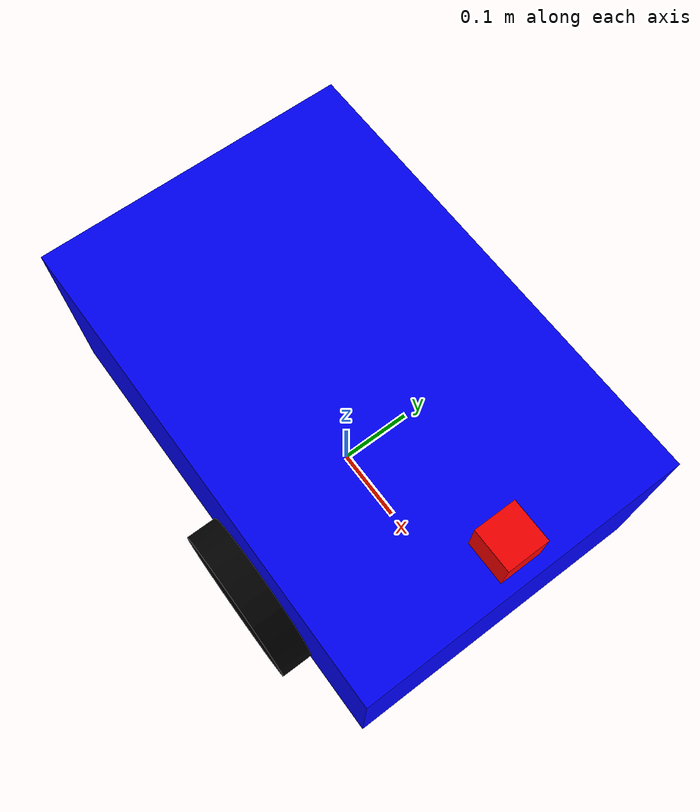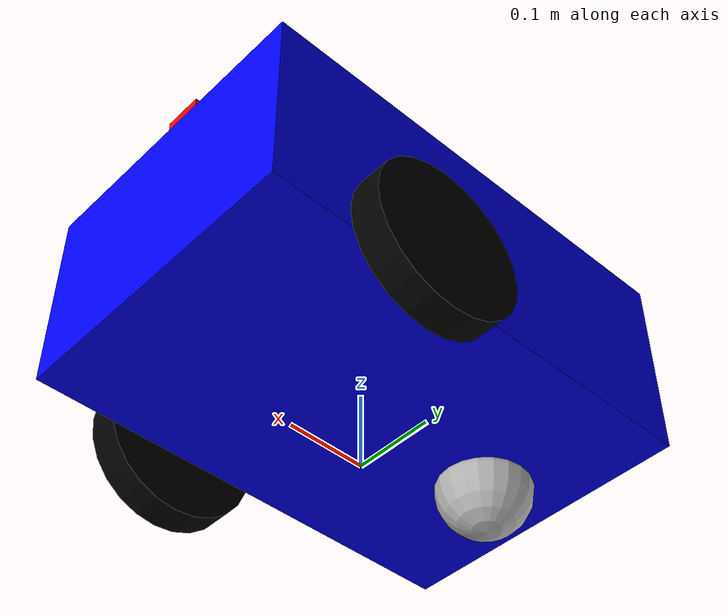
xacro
<?xml version="1.0"?>
<robot name="my_robot" xmlns:xacro="http://www.ros.org/wiki/xacro">

  <xacro:arg name="controller_config_file" default=""/>
  <xacro:property name="controller_config_file" value="$(arg controller_config_file)"/>

  <link name="base_footprint"/>

  <joint name="base_joint" type="fixed">
    <parent link="base_footprint"/>
    <child link="base_link"/>
    <origin xyz="0.0 0.0 0.2" rpy="0.0 0.0 0.0"/>
  </joint>

  <!-- Base Link -->
  <link name="base_link">
    <visual>
      <geometry>
        <box size="0.6 0.4 0.25"/>
      </geometry>
      <material name="blue">
        <color rgba="0 0 1 1"/>
      </material>
    </visual>
    <collision>
      <geometry>
        <box size="0.6 0.4 0.25"/>

      </geometry>
    </collision>
    <inertial>
      <mass value="5.0"/>
      <inertia ixx="0.04" ixy="0.0" ixz="0.0" iyy="0.08" iyz="0.0" izz="0.1"/>
    </inertial>
  </link>

  <!-- Left Wheel -->
  <link name="left_wheel_link">
    <visual>
      <geometry>
        <cylinder radius="0.1" length="0.04"/>
      </geometry>
      <material name="black">
        <color rgba="0 0 0 1"/>
      </material>
    </visual>
    <collision>
      <geometry>
        <cylinder radius="0.1" length="0.04"/>
      </geometry>
    </collision>
    <inertial>
      <mass value="0.5"/>
      <inertia ixx="0.001" ixy="0.0" ixz="0.0" iyy="0.001" iyz="0.0" izz="0.001"/>
    </inertial>
  </link>

  <joint name="left_wheel_joint" type="continuous">
    <parent link="base_link"/>
    <child link="left_wheel_link"/>
    <origin xyz="0.10 0.22 -0.1" rpy="1.5707 0 0"/>
    <axis xyz="0 0 1"/>
  </joint>

  <!-- Right Wheel -->
  <link name="right_wheel_link">
    <visual>
      <geometry>
        <cylinder radius="0.1" length="0.04"/>
      </geometry>
      <material name="black"/>
    </visual>
    <collision>
      <geometry>
        <cylinder radius="0.1" length="0.04"/>
      </geometry>
    </collision>
    <inertial>
      <mass value="0.5"/>
      <inertia ixx="0.001" ixy="0.0" ixz="0.0" iyy="0.001" iyz="0.0" izz="0.001"/>
    </inertial>
  </link>

  <joint name="right_wheel_joint" type="continuous">
    <parent link="base_link"/>
    <child link="right_wheel_link"/>
    <origin xyz="0.1 -0.22 -0.1" rpy="1.5707 0 0"/>
    <axis xyz="0 0 1"/>
  </joint>

  <!-- Caster Wheel (Sphere Support) -->
  <link name="caster_wheel_link">
    <visual>
      <geometry>
        <sphere radius="0.06"/>
      </geometry>
      <material name="grey">
        <color rgba="0.7 0.7 0.7 1"/>
      </material>
    </visual>
    <collision>
      <geometry>
        <sphere radius="0.06"/>
      </geometry>
    </collision>
    <inertial>
      <mass value="0.1"/>
      <inertia ixx="0.0001" ixy="0.0" ixz="0.0" iyy="0.0001" iyz="0.0" izz="0.0001"/>
    </inertial>
  </link>

  <joint name="caster_wheel_joint" type="fixed">
    <parent link="base_link"/>
    <child link="caster_wheel_link"/>
    <origin xyz="-0.2 0 -0.13"/>
  </joint>

  <!-- Camera Link -->
  <link name="camera_link">
    <visual name='visual'>
      <geometry>
        <box size="0.05 0.05 0.05"/>
      </geometry>
      <material name="red">
        <color rgba="1 0 0 1"/>
      </material>
    </visual>
    <collision>
      <geometry>
        <box size="0.05 0.05 0.05"/>
      </geometry>
    </collision>
    <inertial>
      <mass value="0.1"/>
      <inertia ixx="0.0001" ixy="0.0" ixz="0.0" iyy="0.0001" iyz="0.0" izz="0.0001"/>
    </inertial>
  </link>

  <joint name="camera_joint" type="fixed">
    <parent link="base_link"/>
    <child link="camera_link"/>
    <origin xyz="0.26 0 0.15"/>
  </joint>

  <!-- Gazebo specific elements -->
  <gazebo reference="base_link">
    <material>Gazebo/Blue</material>
  </gazebo>

  <gazebo reference="left_wheel_link">
    <material>Gazebo/Black</material>
    <mu1>1.0</mu1>
    <mu2>1.0</mu2>
    <kp>1000000.0</kp>
    <kd>100.0</kd>
    <minDepth>0.001</minDepth>
    <maxVel>1.0</maxVel>
  </gazebo>

  <gazebo reference="right_wheel_link">
    <material>Gazebo/Black</material>
    <mu1>1.0</mu1>
    <mu2>1.0</mu2>
    <kp>1000000.0</kp>
    <kd>100.0</kd>
    <minDepth>0.001</minDepth>
    <maxVel>1.0</maxVel>
  </gazebo>

  <gazebo reference="caster_wheel_link">
    <material>Gazebo/Grey</material>
    <mu1>0.0</mu1>
    <mu2>0.0</mu2>
    <kp>1000000.0</kp>
    <kd>100.0</kd>
    <minDepth>0.001</minDepth>
  </gazebo>

  <gazebo reference="camera_link">
    <material>Gazebo/Red</material>
  </gazebo>

  <!-- Camera Sensor Plugin -->
  <gazebo reference="camera_link">
    <sensor type="camera" name="camera_sensor">
      <update_rate>30.0</update_rate>
      <camera name="head_camera">
        <horizontal_fov>1.3962634</horizontal_fov>
        <image>
          <width>640</width>
          <height>480</height>
          <format>R8G8B8</format>
        </image>
        <clip>
          <near>0.02</near>
          <far>300</far>
        </clip>
        <noise>
          <type>gaussian</type>
          <mean>0.0</mean>
          <stddev>0.007</stddev>
        </noise>
      </camera>
      <plugin name="camera_controller" filename="libgazebo_ros_camera.so">
        <ros>
          <namespace>/my_robot</namespace>
          <argument>--ros-args -r image_raw:=camera/image_raw</argument>
          <argument>--ros-args -r camera_info:=camera/camera_info</argument>
        </ros>
        <camera_name>camera</camera_name>
        <frame_name>camera_link</frame_name>
      </plugin>
    </sensor>
  </gazebo>

  <ros2_control name="GazeboSystem" type="system">
    <hardware>
      <plugin>gazebo_ros2_control/GazeboSystem</plugin>
    </hardware>
    <joint name="left_wheel_joint">
      <command_interface name="velocity">
        <param name="min">-10</param>
        <param name="max">10</param>
      </command_interface>
      <state_interface name="velocity"/>
      <state_interface name="position"/>
    </joint>
    <joint name="right_wheel_joint">
      <command_interface name="velocity">
        <param name="min">-10</param>
        <param name="max">10</param>
      </command_interface>
      <state_interface name="velocity"/>
      <state_interface name="position"/>
    </joint>
  </ros2_control>

  <gazebo>
    <plugin filename="libgazebo_ros2_control.so" name="gazebo_ros2_control">
      <parameters>$(find my_robot_description)/config/my_robot_controllers.yaml</parameters>
    </plugin>
  </gazebo>

</robot>
